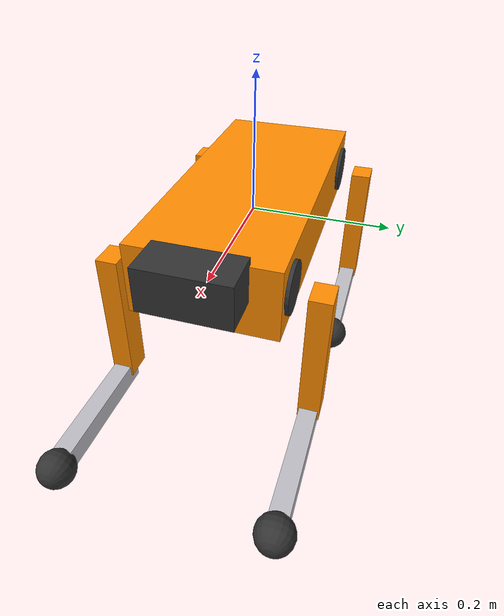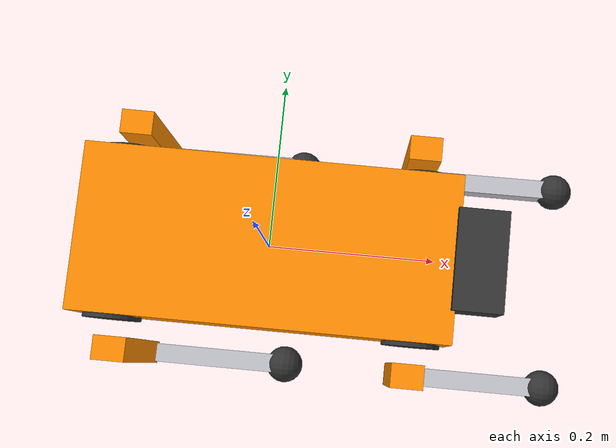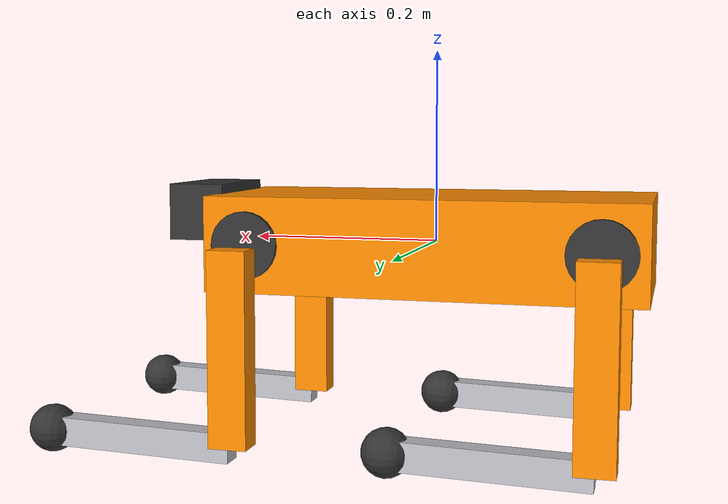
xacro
<?xml version="1.0"?>
<!-- A 4-legged robot: 12 revolute joints (hip, thigh, calf on each leg), built with ONE leg macro used 4 times -->
<robot name="quadruped" xmlns:xacro="http://www.ros.org/wiki/xacro">
  <xacro:include filename="../../common/urdf/macros.xacro"/>
  <xacro:include filename="../../common/urdf/leg_macro.xacro"/>
  <link name="base_link">
    <visual><geometry><box size="0.45 0.20 0.10"/></geometry><material name="orange"/></visual>
    <visual><origin xyz="0.25 0 0.03"/><geometry><box size="0.06 0.12 0.06"/></geometry><material name="dark_grey"/></visual>
    <collision><geometry><box size="0.45 0.20 0.10"/></geometry></collision>
    <xacro:box_inertia m="6.0" x="0.45" y="0.20" z="0.10"/>
  </link>
  <xacro:quad_leg prefix="front_left" parent="base_link" x="0.18" y_sign="1"/>
  <xacro:quad_leg prefix="front_right" parent="base_link" x="0.18" y_sign="-1"/>
  <xacro:quad_leg prefix="rear_left" parent="base_link" x="-0.18" y_sign="1"/>
  <xacro:quad_leg prefix="rear_right" parent="base_link" x="-0.18" y_sign="-1"/>
</robot>

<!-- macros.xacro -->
<!-- Shared materials and inertia macros (solid box, cylinder along Z, sphere) -->
<robot xmlns:xacro="http://www.ros.org/wiki/xacro">
  <material name="orange"><color rgba="1.0 0.55 0.0 1.0"/></material>
  <material name="dark_grey"><color rgba="0.2 0.2 0.2 1.0"/></material>
  <material name="light_grey"><color rgba="0.75 0.75 0.78 1.0"/></material>
  <material name="sky_blue"><color rgba="0.3 0.7 1.0 1.0"/></material>
  <material name="green"><color rgba="0.2 0.75 0.35 1.0"/></material>
  <material name="red"><color rgba="0.9 0.2 0.2 1.0"/></material>
  <material name="white"><color rgba="0.95 0.95 0.95 1.0"/></material>
  <material name="prop_blue"><color rgba="0.3 0.6 1.0 0.6"/></material>

  <xacro:macro name="box_inertia" params="m x y z xyz:='0 0 0' rpy:='0 0 0'">
    <inertial>
      <origin xyz="${xyz}" rpy="${rpy}"/>
      <mass value="${m}"/>
      <inertia ixx="${m*(y*y+z*z)/12}" ixy="0" ixz="0" iyy="${m*(x*x+z*z)/12}" iyz="0" izz="${m*(x*x+y*y)/12}"/>
    </inertial>
  </xacro:macro>
  <xacro:macro name="cylinder_inertia" params="m r h xyz:='0 0 0' rpy:='0 0 0'">
    <inertial>
      <origin xyz="${xyz}" rpy="${rpy}"/>
      <mass value="${m}"/>
      <inertia ixx="${m*(3*r*r+h*h)/12}" ixy="0" ixz="0" iyy="${m*(3*r*r+h*h)/12}" iyz="0" izz="${m*r*r/2}"/>
    </inertial>
  </xacro:macro>
  <xacro:macro name="sphere_inertia" params="m r xyz:='0 0 0'">
    <inertial>
      <origin xyz="${xyz}"/>
      <mass value="${m}"/>
      <inertia ixx="${2*m*r*r/5}" ixy="0" ixz="0" iyy="${2*m*r*r/5}" iyz="0" izz="${2*m*r*r/5}"/>
    </inertial>
  </xacro:macro>
</robot>

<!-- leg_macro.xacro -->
<!-- One leg of a 4-legged robot: hip (roll about X), thigh (pitch about Y), calf (pitch about Y), foot. -->
<robot xmlns:xacro="http://www.ros.org/wiki/xacro">
  <xacro:macro name="quad_leg" params="prefix parent x y_sign">
    <joint name="${prefix}_hip_joint" type="revolute">
      <parent link="${parent}"/><child link="${prefix}_hip_link"/>
      <origin xyz="${x} ${y_sign*0.08} 0"/><axis xyz="1 0 0"/><limit lower="-0.8" upper="0.8" effort="20" velocity="10"/>
    </joint>
    <link name="${prefix}_hip_link">
      <visual><origin rpy="${pi/2} 0 0"/><geometry><cylinder radius="0.035" length="0.05"/></geometry><material name="dark_grey"/></visual>
      <collision><origin rpy="${pi/2} 0 0"/><geometry><cylinder radius="0.035" length="0.05"/></geometry></collision>
      <xacro:cylinder_inertia m="0.5" r="0.035" h="0.05" rpy="${pi/2} 0 0"/>
    </link>
    <joint name="${prefix}_thigh_joint" type="revolute">
      <parent link="${prefix}_hip_link"/><child link="${prefix}_thigh_link"/>
      <origin xyz="0 ${y_sign*0.06} 0"/><axis xyz="0 1 0"/><limit lower="-1.0" upper="2.0" effort="20" velocity="10"/>
    </joint>
    <link name="${prefix}_thigh_link">
      <visual><origin xyz="0 0 -0.10"/><geometry><box size="0.04 0.03 0.20"/></geometry><material name="orange"/></visual>
      <collision><origin xyz="0 0 -0.10"/><geometry><box size="0.04 0.03 0.20"/></geometry></collision>
      <xacro:box_inertia m="0.6" x="0.04" y="0.03" z="0.20" xyz="0 0 -0.10"/>
    </link>
    <joint name="${prefix}_calf_joint" type="revolute">
      <parent link="${prefix}_thigh_link"/><child link="${prefix}_calf_link"/>
      <origin xyz="0 0 -0.20"/><axis xyz="0 1 0"/><limit lower="-2.6" upper="-0.6" effort="25" velocity="10"/>
    </joint>
    <link name="${prefix}_calf_link">
      <visual><origin xyz="0 0 -0.10"/><geometry><box size="0.03 0.025 0.20"/></geometry><material name="light_grey"/></visual>
      <collision><origin xyz="0 0 -0.10"/><geometry><box size="0.03 0.025 0.20"/></geometry></collision>
      <xacro:box_inertia m="0.2" x="0.03" y="0.025" z="0.20" xyz="0 0 -0.10"/>
    </link>
    <joint name="${prefix}_foot_joint" type="fixed">
      <parent link="${prefix}_calf_link"/><child link="${prefix}_foot_link"/><origin xyz="0 0 -0.20"/>
    </joint>
    <link name="${prefix}_foot_link">
      <visual><geometry><sphere radius="0.025"/></geometry><material name="dark_grey"/></visual>
      <collision><geometry><sphere radius="0.025"/></geometry></collision>
      <xacro:sphere_inertia m="0.05" r="0.025"/>
    </link>
  </xacro:macro>
</robot>
